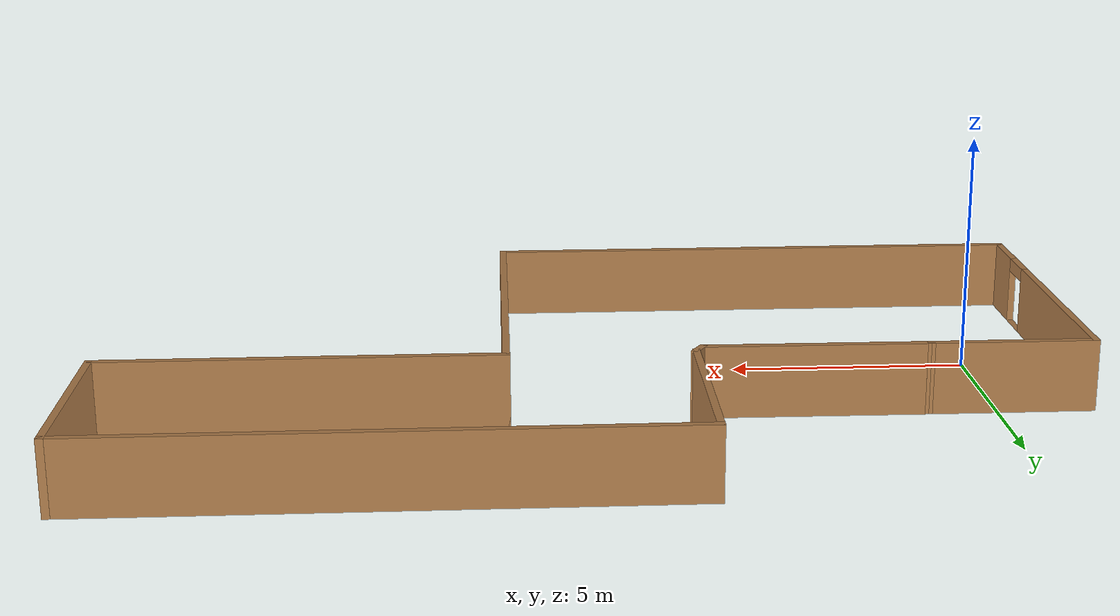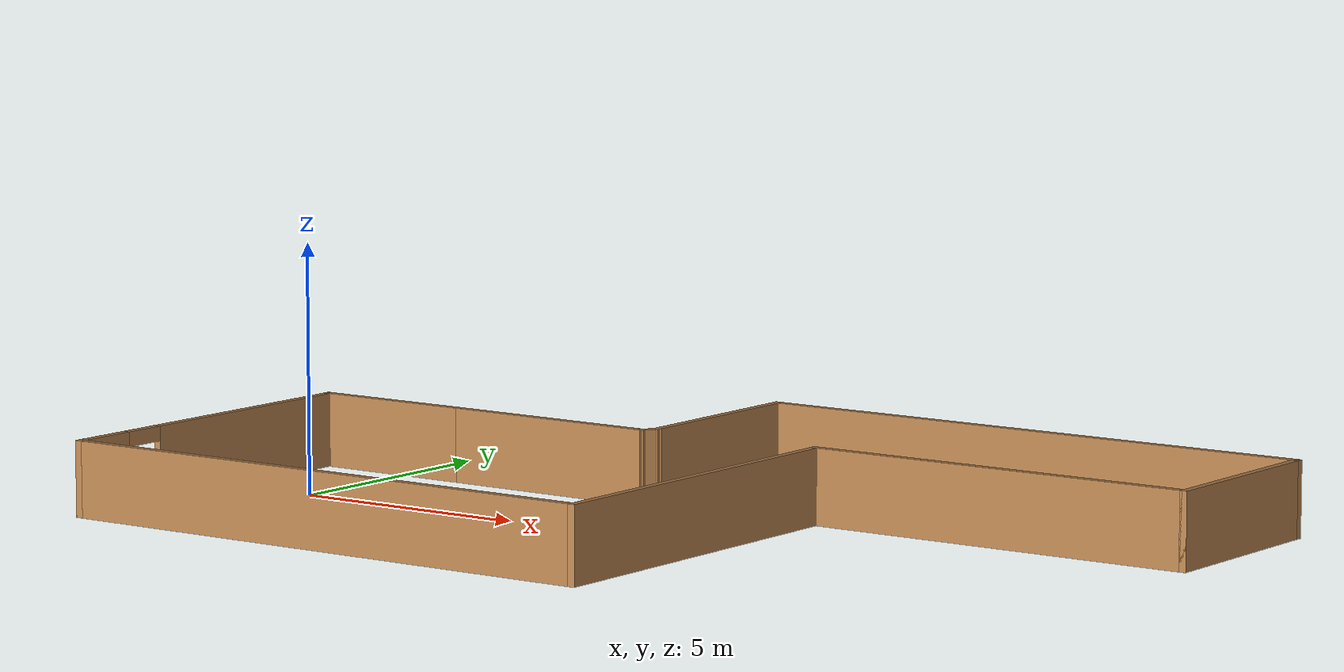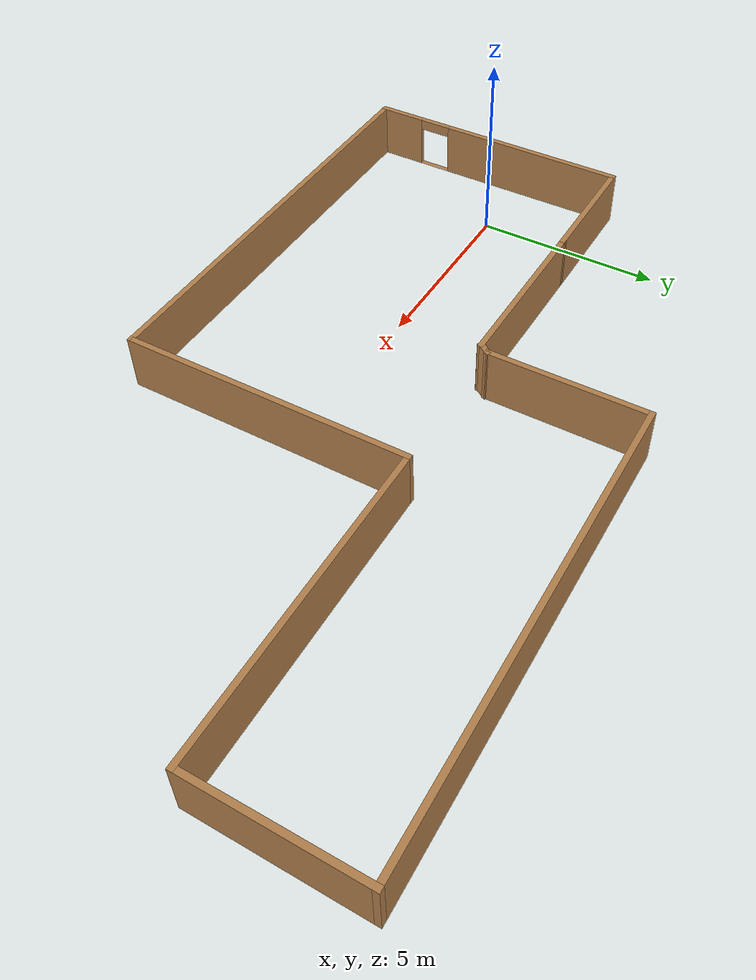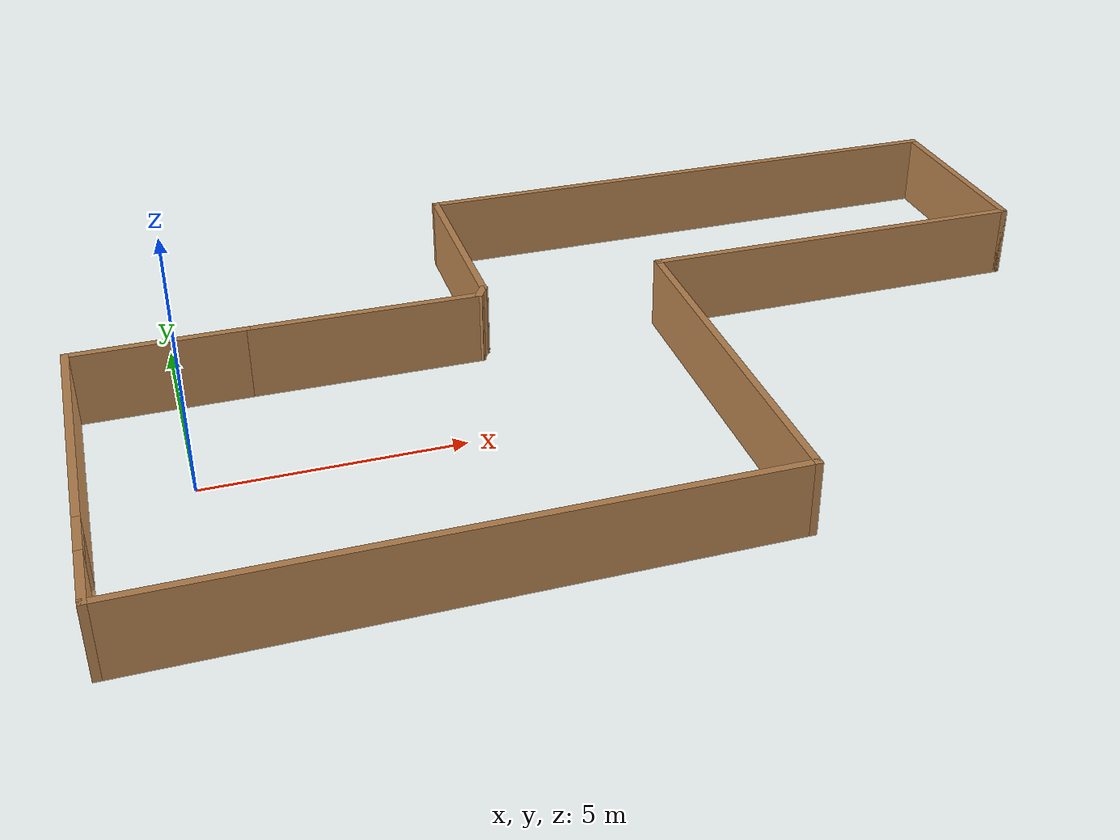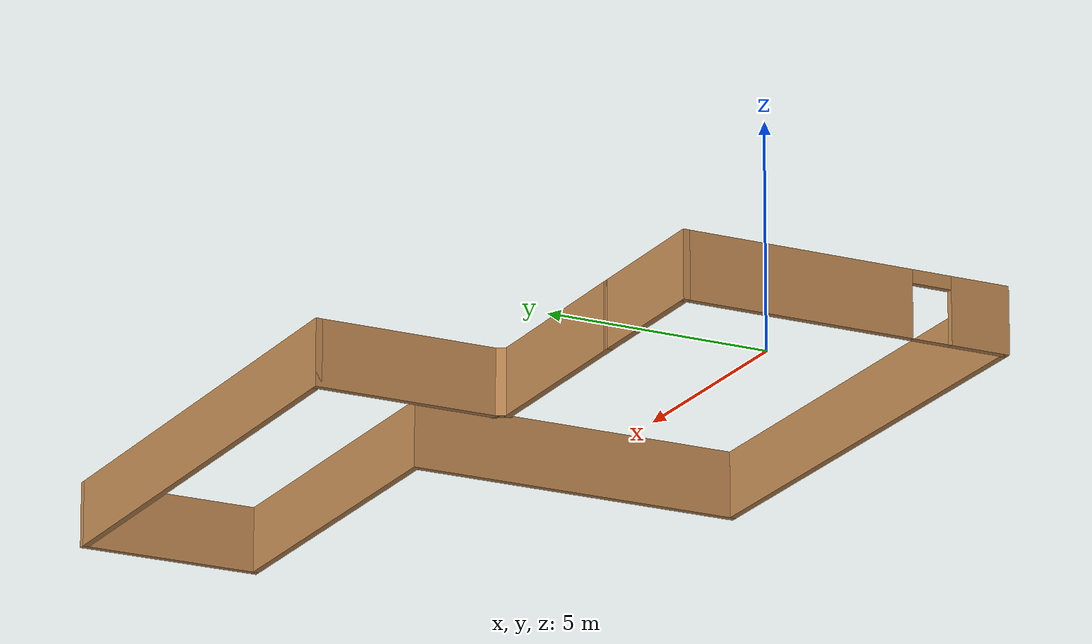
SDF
<?xml version='1.0'?>
<sdf version='1.7'>
  <model name='Untitled'>
    <pose>8.035 1.37 0 0 -0 0</pose>
    <link name='Wall_10'>
      <collision name='Wall_10_Collision'>
        <geometry>
          <box>
            <size>4.25 0.15 1.5</size>
          </box>
        </geometry>
        <pose>0 0 0.75 0 -0 0</pose>
      </collision>
      <visual name='Wall_10_Visual'>
        <pose>0 0 0.75 0 -0 0</pose>
        <geometry>
          <box>
            <size>4.25 0.15 1.5</size>
          </box>
        </geometry>
        <material>
          <script>
            <uri>file://media/materials/scripts/gazebo.material</uri>
            <name>Gazebo/Wood</name>
          </script>
          <ambient>1 1 1 1</ambient>
        </material>
        <meta>
          <layer>0</layer>
        </meta>
      </visual>
      <pose>9.975 3.8 0 0 -0 1.5708</pose>
    </link>
    <link name='Wall_11'>
      <collision name='Wall_11_Collision'>
        <geometry>
          <box>
            <size>12 0.15 1.5</size>
          </box>
        </geometry>
        <pose>0 0 0.75 0 -0 0</pose>
      </collision>
      <visual name='Wall_11_Visual'>
        <pose>0 0 0.75 0 -0 0</pose>
        <geometry>
          <box>
            <size>12 0.15 1.5</size>
          </box>
        </geometry>
        <material>
          <script>
            <uri>file://media/materials/scripts/gazebo.material</uri>
            <name>Gazebo/Wood</name>
          </script>
          <ambient>1 1 1 1</ambient>
        </material>
        <meta>
          <layer>0</layer>
        </meta>
      </visual>
      <pose>4.05 5.85 0 0 -0 3.14159</pose>
    </link>
    <link name='Wall_12'>
      <collision name='Wall_12_Collision'>
        <geometry>
          <box>
            <size>4.25 0.15 1.5</size>
          </box>
        </geometry>
        <pose>0 0 0.75 0 -0 0</pose>
      </collision>
      <visual name='Wall_12_Visual'>
        <pose>0 0 0.75 0 -0 0</pose>
        <geometry>
          <box>
            <size>4.25 0.15 1.5</size>
          </box>
        </geometry>
        <material>
          <script>
            <uri>file://media/materials/scripts/gazebo.material</uri>
            <name>Gazebo/Wood</name>
          </script>
          <ambient>1 1 1 1</ambient>
        </material>
        <meta>
          <layer>0</layer>
        </meta>
      </visual>
      <pose>-1.875 3.8 0 0 -0 -1.5708</pose>
    </link>
    <link name='Wall_14'>
      <collision name='Wall_14_Collision'>
        <geometry>
          <box>
            <size>4.75 0.15 1.5</size>
          </box>
        </geometry>
        <pose>0 0 0.75 0 -0 0</pose>
      </collision>
      <visual name='Wall_14_Visual'>
        <pose>0 0 0.75 0 -0 0</pose>
        <geometry>
          <box>
            <size>4.75 0.15 1.5</size>
          </box>
        </geometry>
        <material>
          <script>
            <uri>file://media/materials/scripts/gazebo.material</uri>
            <name>Gazebo/Wood</name>
          </script>
          <ambient>1 1 1 1</ambient>
        </material>
        <meta>
          <layer>0</layer>
        </meta>
      </visual>
      <pose>-4.325 1.5155 0 0 -0 -0.006739</pose>
    </link>
    <link name='Wall_15'>
      <collision name='Wall_15_Collision'>
        <geometry>
          <box>
            <size>0.441548 0.15 1.5</size>
          </box>
        </geometry>
        <pose>0 0 0.75 0 -0 0</pose>
      </collision>
      <visual name='Wall_15_Visual'>
        <pose>0 0 0.75 0 -0 0</pose>
        <geometry>
          <box>
            <size>0.441548 0.15 1.5</size>
          </box>
        </geometry>
        <material>
          <script>
            <uri>file://media/materials/scripts/gazebo.material</uri>
            <name>Gazebo/Wood</name>
          </script>
          <ambient>1 1 1 1</ambient>
        </material>
        <meta>
          <layer>0</layer>
        </meta>
      </visual>
      <pose>-1.95 1.625 0 0 -0 1.03038</pose>
    </link>
    <link name='Wall_5'>
      <collision name='Wall_5_Collision'>
        <geometry>
          <box>
            <size>3.5 0.15 1.5</size>
          </box>
        </geometry>
        <pose>0 0 0.75 0 -0 0</pose>
      </collision>
      <visual name='Wall_5_Visual'>
        <pose>0 0 0.75 0 -0 0</pose>
        <geometry>
          <box>
            <size>3.5 0.15 1.5</size>
          </box>
        </geometry>
        <material>
          <script>
            <uri>file://media/materials/scripts/gazebo.material</uri>
            <name>Gazebo/Wood</name>
          </script>
          <ambient>1 1 1 1</ambient>
        </material>
        <meta>
          <layer>0</layer>
        </meta>
      </visual>
      <pose>-8.3 1.531 0 0 -0 3.14159</pose>
    </link>
    <link name='Wall_6'>
      <pose>-9.975 -2.1595 0 0 -0 -1.5708</pose>
      <visual name='Wall_6_Visual_0'>
        <pose>-1.12851 0 0.75 0 -0 0</pose>
        <geometry>
          <box>
            <size>5.27397 0.15 1.5</size>
          </box>
        </geometry>
        <material>
          <script>
            <uri>file://media/materials/scripts/gazebo.material</uri>
            <name>Gazebo/Wood</name>
          </script>
          <ambient>1 1 1 1</ambient>
        </material>
        <meta>
          <layer>0</layer>
        </meta>
      </visual>
      <collision name='Wall_6_Collision_0'>
        <geometry>
          <box>
            <size>5.27397 0.15 1.5</size>
          </box>
        </geometry>
        <pose>-1.12851 0 0.75 0 -0 0</pose>
      </collision>
      <visual name='Wall_6_Visual_1'>
        <pose>3.08699 0 0.75 0 -0 0</pose>
        <geometry>
          <box>
            <size>1.35703 0.15 1.5</size>
          </box>
        </geometry>
        <material>
          <script>
            <uri>file://media/materials/scripts/gazebo.material</uri>
            <name>Gazebo/Wood</name>
          </script>
          <ambient>1 1 1 1</ambient>
        </material>
        <meta>
          <layer>0</layer>
        </meta>
      </visual>
      <collision name='Wall_6_Collision_1'>
        <geometry>
          <box>
            <size>1.35703 0.15 1.5</size>
          </box>
        </geometry>
        <pose>3.08699 0 0.75 0 -0 0</pose>
      </collision>
      <visual name='Wall_6_Visual_2'>
        <pose>1.95847 0 0 0 -0 0</pose>
        <geometry>
          <box>
            <size>0.9 0.15 0</size>
          </box>
        </geometry>
        <material>
          <script>
            <uri>file://media/materials/scripts/gazebo.material</uri>
            <name>Gazebo/Wood</name>
          </script>
          <ambient>1 1 1 1</ambient>
        </material>
        <meta>
          <layer>0</layer>
        </meta>
      </visual>
      <collision name='Wall_6_Collision_2'>
        <geometry>
          <box>
            <size>0.9 0.15 0</size>
          </box>
        </geometry>
        <pose>1.95847 0 0 0 -0 0</pose>
      </collision>
      <visual name='Wall_6_Visual_3'>
        <pose>1.95847 0 1.35 0 -0 0</pose>
        <geometry>
          <box>
            <size>0.9 0.15 0.3</size>
          </box>
        </geometry>
        <material>
          <script>
            <uri>file://media/materials/scripts/gazebo.material</uri>
            <name>Gazebo/Wood</name>
          </script>
          <ambient>1 1 1 1</ambient>
        </material>
        <meta>
          <layer>0</layer>
        </meta>
      </visual>
      <collision name='Wall_6_Collision_3'>
        <geometry>
          <box>
            <size>0.9 0.15 0.3</size>
          </box>
        </geometry>
        <pose>1.95847 0 1.35 0 -0 0</pose>
      </collision>
    </link>
    <link name='Wall_7'>
      <collision name='Wall_7_Collision'>
        <geometry>
          <box>
            <size>12 0.15 1.5</size>
          </box>
        </geometry>
        <pose>0 0 0.75 0 -0 0</pose>
      </collision>
      <visual name='Wall_7_Visual'>
        <pose>0 0 0.75 0 -0 0</pose>
        <geometry>
          <box>
            <size>12 0.15 1.5</size>
          </box>
        </geometry>
        <material>
          <script>
            <uri>file://media/materials/scripts/gazebo.material</uri>
            <name>Gazebo/Wood</name>
          </script>
          <ambient>1 1 1 1</ambient>
        </material>
        <meta>
          <layer>0</layer>
        </meta>
      </visual>
      <pose>-4.05 -5.85 0 0 -0 0</pose>
    </link>
    <link name='Wall_8'>
      <collision name='Wall_8_Collision'>
        <geometry>
          <box>
            <size>7.75 0.15 1.5</size>
          </box>
        </geometry>
        <pose>0 0 0.75 0 -0 0</pose>
      </collision>
      <visual name='Wall_8_Visual'>
        <pose>0 0 0.75 0 -0 0</pose>
        <geometry>
          <box>
            <size>7.75 0.15 1.5</size>
          </box>
        </geometry>
        <material>
          <script>
            <uri>file://media/materials/scripts/gazebo.material</uri>
            <name>Gazebo/Wood</name>
          </script>
          <ambient>1 1 1 1</ambient>
        </material>
        <meta>
          <layer>0</layer>
        </meta>
      </visual>
      <pose>1.875 -2.05 0 0 -0 1.5708</pose>
    </link>
    <link name='Wall_9'>
      <collision name='Wall_9_Collision'>
        <geometry>
          <box>
            <size>8.25 0.15 1.5</size>
          </box>
        </geometry>
        <pose>0 0 0.75 0 -0 0</pose>
      </collision>
      <visual name='Wall_9_Visual'>
        <pose>0 0 0.75 0 -0 0</pose>
        <geometry>
          <box>
            <size>8.25 0.15 1.5</size>
          </box>
        </geometry>
        <material>
          <script>
            <uri>file://media/materials/scripts/gazebo.material</uri>
            <name>Gazebo/Wood</name>
          </script>
          <ambient>1 1 1 1</ambient>
        </material>
        <meta>
          <layer>0</layer>
        </meta>
      </visual>
      <pose>5.925 1.75 0 0 -0 0</pose>
    </link>
    <static>1</static>
  </model>
</sdf>
